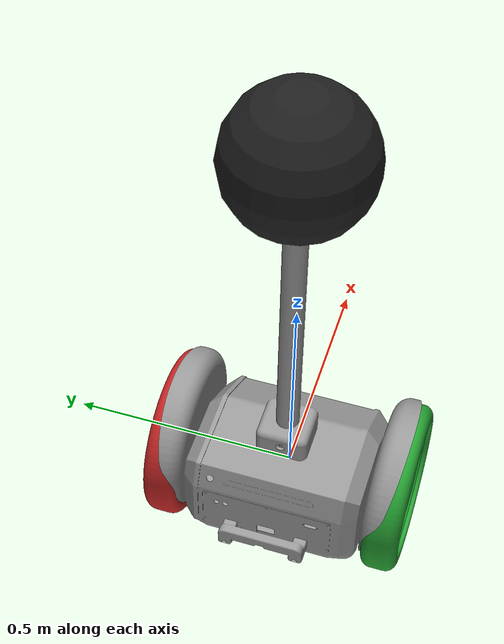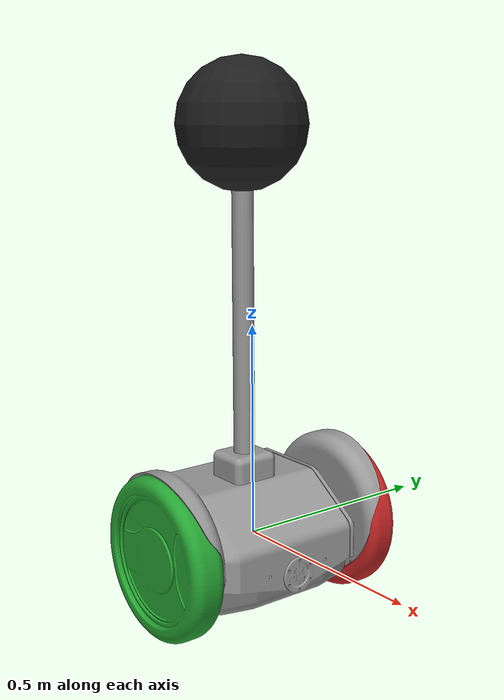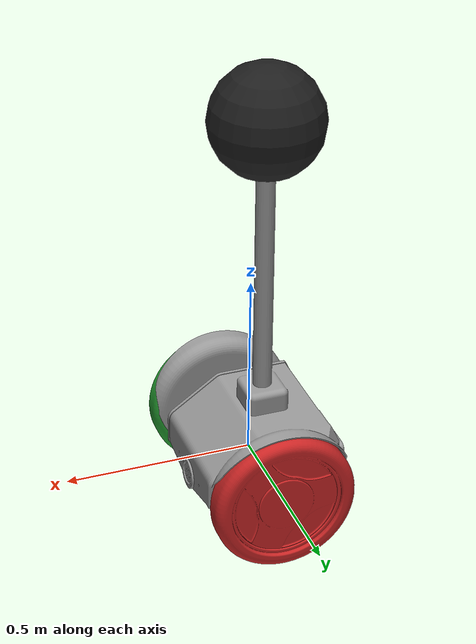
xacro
<?xml version="1.0"?>

<robot name="balance" xmlns:xacro="http://www.ros.org/wiki/xacro">
  <xacro:include filename="$(find rsv_balance_description)/urdf/balance.urdf.xacro" />
  <xacro:balance/>

  <xacro:property name="rod_length" value=".95" />
  <xacro:property name="rod_radius" value=".025" />
  <xacro:property name="rod_shift" value="-.035" />
  <xacro:property name="rod_mass" value=".5" />

  <xacro:property name="weight_radius" value="0.15" />
  <xacro:property name="weight_mass" value="5.6" />

  <link name="rod_link">
    <visual>
      <geometry>
        <cylinder length="${rod_length}" radius="${rod_radius}"/>
      </geometry>
      <material name="grey"/>
    </visual>
    <collision>
      <geometry>
        <cylinder length="${rod_length}" radius="${rod_radius}"/>
      </geometry>
    </collision>
    <xacro:cyl_inertia mass="${rod_mass}" height="${rod_length}" radius="${rod_radius}"/>
    <self_collide>0</self_collide>
  </link>
  <joint name="base_to_rod" type="fixed">
    <parent link="base_link"/>
    <child link="rod_link"/>
    <origin xyz="${rod_shift} 0 ${rod_length/2}" rpy="0 0 0"/>
  </joint>

  <link name="weight_link">
    <visual>
      <geometry>
        <sphere radius="${weight_radius}"/>
      </geometry>
      <material name="black"/>
    </visual>
    <collision>
      <geometry>
        <sphere radius="${weight_radius}"/>
      </geometry>
    </collision>
    <self_collide>0</self_collide>
    <xacro:sphere_inertia m="${weight_mass}" r="${weight_radius}"/>
  </link>
  <joint name="rod_to_weight" type="fixed">
    <parent link="rod_link"/>
    <child link="weight_link"/>
    <origin xyz=".0 0 ${rod_length/2}" rpy="0 0 0"/>
  </joint>
</robot>

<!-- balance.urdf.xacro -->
<robot xmlns:xacro="http://www.ros.org/wiki/xacro">
  <xacro:property name="base_length" value=".26" />
  <xacro:property name="base_width" value=".42" />
  <xacro:property name="base_heigth" value=".26" />
  <xacro:property name="base_mass" value="23." />
  <xacro:property name="base_cm" value="-.08" />

  <xacro:property name="wheel_radius" value=".19" />
  <xacro:property name="wheel_width" value=".08" />
  <xacro:property name="wheel_mass" value="2.6" />

  <xacro:macro name="balance">
    <xacro:include filename="$(find rsv_balance_description)/urdf/materials.xacro" />
    <xacro:include filename="$(find rsv_balance_description)/urdf/inertias.xacro" />
    <xacro:include filename="$(find rsv_balance_description)/urdf/wheel.urdf.xacro" />

    <link name="base_link">
      <visual>
        <geometry>
          <mesh filename="package://rsv_balance_description/meshes/platform.stl"/>
        </geometry>
        <material name="grey"/>
      </visual>
      <collision>
        <origin xyz="0 0 0" rpy="0 0 0" />
        <geometry>
          <box size="${base_length} ${base_width} ${base_heigth}"/>
        </geometry>
      </collision>
      <self_collide>0</self_collide>
      <xacro:box_inertia m="${base_mass}" w="${base_width}" d="${base_length}" h="${base_heigth}" x="0" y="0" z="${base_cm}"/>
    </link>

    <xacro:wheel prefix="left" reflect="1" color="red"/>
    <xacro:wheel prefix="right" reflect="-1" color="green"/>
  </xacro:macro>
</robot>

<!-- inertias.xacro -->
<robot xmlns:xacro="http://www.ros.org/wiki/xacro">
  <xacro:macro name="sphere_inertia" params="m r">
    <inertial>
      <mass value="${m}" />
      <inertia ixx="${2/5.*m*r*r}" ixy="0.0" ixz="0.0" iyy="${2/5.*m*r*r}" iyz="0.0" izz="${2/5.*m*r*r}" />
    </inertial>
  </xacro:macro>

  <xacro:macro name="cyl_inertia" params="mass height radius">
    <inertial>
      <mass value="${mass}" />
      <inertia ixx="${1/12.*mass*(3*radius*radius+height*height)}" ixy="0.0" ixz="0.0" iyy="${1/12.*mass*(3*radius*radius+height*height)}" iyz="0.0" izz="${1/2.*mass*radius*radius}" />
    </inertial>
  </xacro:macro>

  <xacro:macro name="box_inertia" params="m w d  h x y z">
    <inertial>
      <mass value="${m}" />
      <origin xyz="${x} ${y} ${z}"/>
      <inertia ixx="${1/12.*m*(h*h+w*w)}" ixy="0.0" ixz="0.0" iyy="${1/12.*m*(d*d+h*h)}" iyz="0.0" izz="${1/12.*m*(w*w+d*d)}" />
    </inertial>
  </xacro:macro>
</robot>

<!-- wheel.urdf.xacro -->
<robot xmlns:xacro="http://www.ros.org/wiki/xacro">
  <xacro:macro name="wheel" params="prefix reflect color">
    <link name="${prefix}_wheel">
      <visual>
      <geometry>
        <mesh filename="package://rsv_balance_description/meshes/wheel.stl"/>
      </geometry>
      <material name="${color}"/>
      </visual>
      <collision name="${prefix}_wheel">
        <geometry>
          <cylinder length="${wheel_width}" radius="${wheel_radius}"/>
        </geometry>
      </collision>
      <xacro:cyl_inertia mass="${wheel_mass}" height="${wheel_width}" radius="${wheel_radius}"/>
      <self_collide>0</self_collide>
    </link>
    <joint name="base_to_${prefix}_wheel" type="continuous">
      <parent link="base_link"/>
      <child link="${prefix}_wheel"/>
      <axis xyz="0 0 1"/>
      <origin xyz="0 ${reflect*(base_width/2+wheel_width/2)} 0" rpy="${reflect*1.57} 0 0"/>
    </joint>
  </xacro:macro>
</robot>
